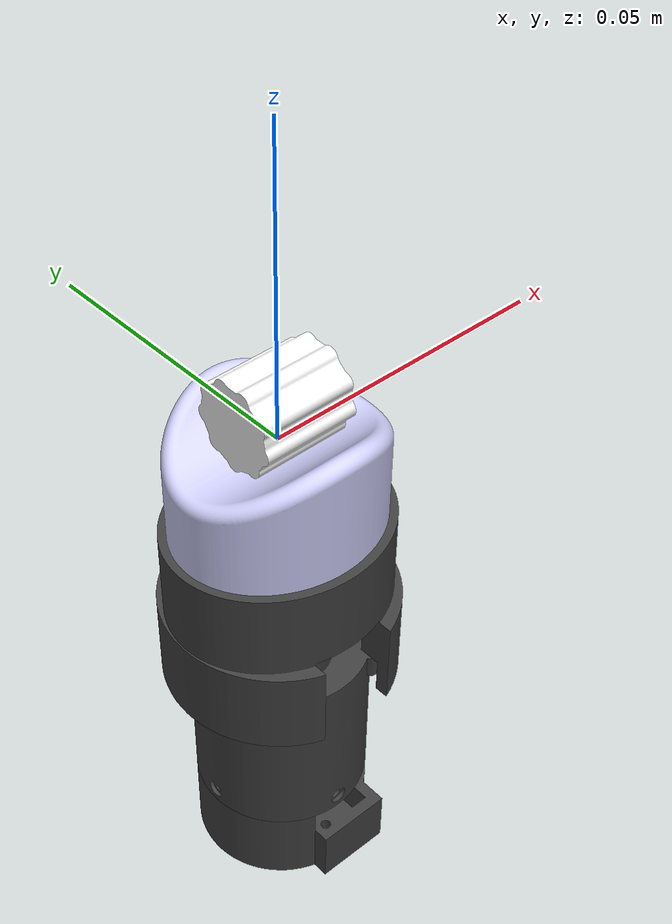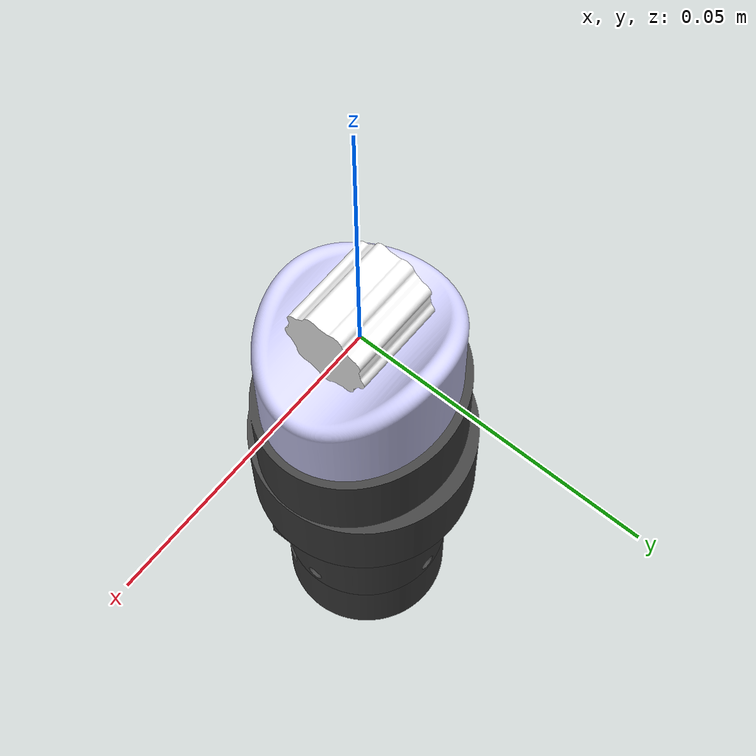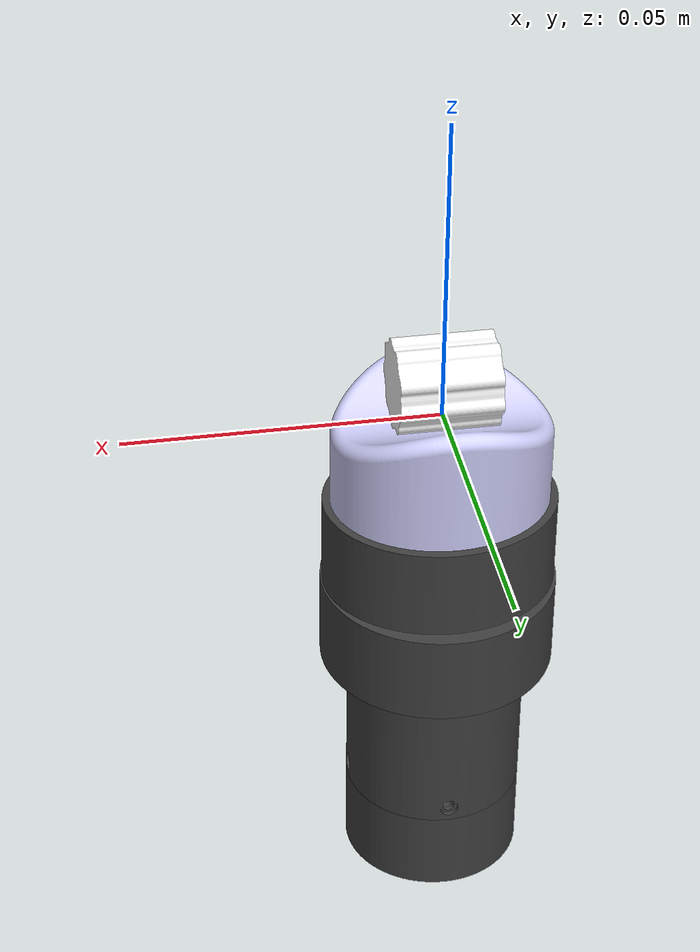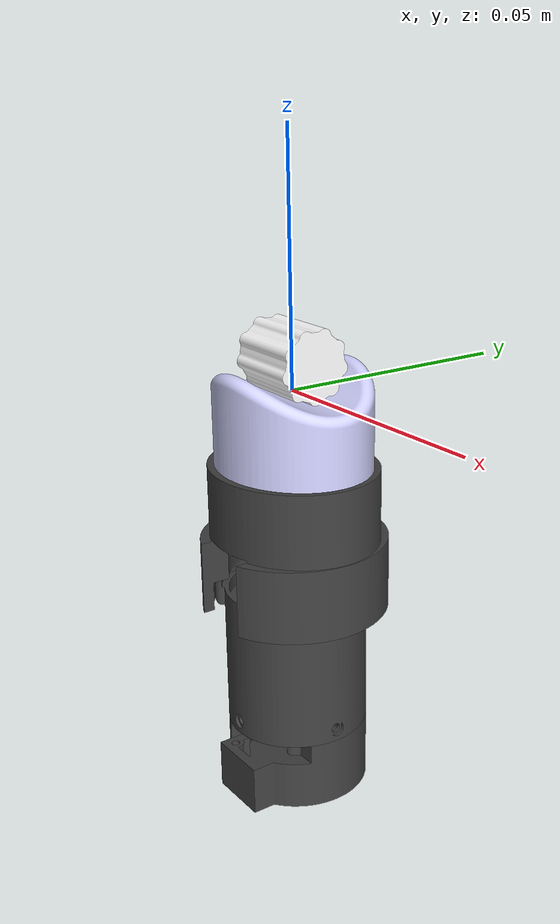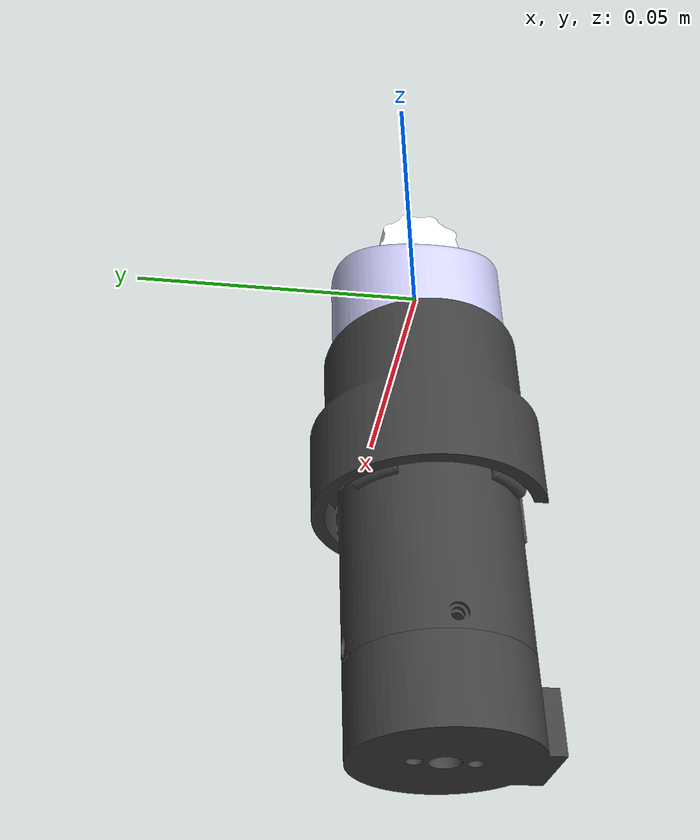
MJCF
<?xml version="1.0" encoding="utf-8"?>
<mujoco>
    <asset>
        <mesh file="stls/fixed_ring.STL" name="fixed_ring" scale="0.001 0.001 0.001"/>
        <mesh file="stls/Membrane.STL" name="Membrane" scale="0.001 0.001 0.001"/>
        <mesh file="stls/Mid_layer.STL" name="Mid_layer" scale="0.001 0.001 0.001"/>
        <mesh file="stls/Upper_layer.STL" name="Upper_layer" scale="0.001 0.001 0.001"/>
        <mesh file="stls/Cube_1.STL" name="Cube_1" scale="0.001 0.001 0.001"/>
        <mesh file="stls/Cube_2.STL" name="Cube_2" scale="0.001 0.001 0.001"/>
        <mesh file="stls/Cylinder.STL" name="Cylinder" scale="0.001 0.001 0.001"/>
        <mesh file="stls/Cylinder_texture.STL" name="Cylinder_texture" scale="0.001 0.001 0.001"/>
        <mesh file="stls/Ellipsoid.STL" name="Ellipsoid" scale="0.001 0.001 0.001"/>
        <texture type="skybox" builtin="gradient" rgb1="1 1 1" rgb2="1 1 1" width="512" height="3072"/>
    </asset>
    <worldbody>

        <!-- probe -->
        <body name="probe" pos="0 0 0" euler="0 0 0">
            <geom type="mesh" mesh="Cylinder_texture" name="object_geom" rgba="1 1 1 1"/>
            <joint name="slide0" axis="0 0 1" damping="0" pos="0 0 0" type="slide"/>
            <joint name="slide1" axis="0 1 0" damping="0" pos="0 0 0" type="slide"/>
            <joint name="slide2" axis="1 0 0" damping="0" pos="0 0 0" type="slide"/>
        </body>

        <!-- back case, front case, glass, and gel -->
        <body name="fixed_ring" pos="0 0 0" euler="0 0 0">
            <geom type="mesh" mesh="fixed_ring" name="fixed_ring" rgba="0.25098 0.25098 0.25098 1"/>
            <body name="Membrane" pos="0 0 0">
                <geom type="mesh" mesh="Membrane" name="Membrane" rgba="0.82353 0.82353 1 1"/>
                            <body name="Mid_layer" pos="0 0 0">
                <geom type="mesh" mesh="Mid_layer" name="Mid_layer" rgba="0.25098 0.25098 0.25098 1"/>
                            <body name="Upper_layer" pos="0 0 0">
                <geom type="mesh" mesh="Upper_layer" name="Upper_layer" rgba="0.25098 0.25098 0.25098 1"/>

                    </body>
                </body>
            </body>
            </body>

        <!-- Camera definition -->
        <camera name="main_camera" pos="-0.2 0 0" zaxis="-1 0 0" fovy="50"/>

    </worldbody>
    <actuator>
        <velocity joint="slide0"/>
        <velocity joint="slide1"/>
        <velocity joint="slide2"/>
    </actuator>
    <contact>
        <exclude body1="probe" body2="Membrane"/>
    </contact>
    <option timestep="0.0001">
        <flag gravity="disable"/>
    </option>
</mujoco>
